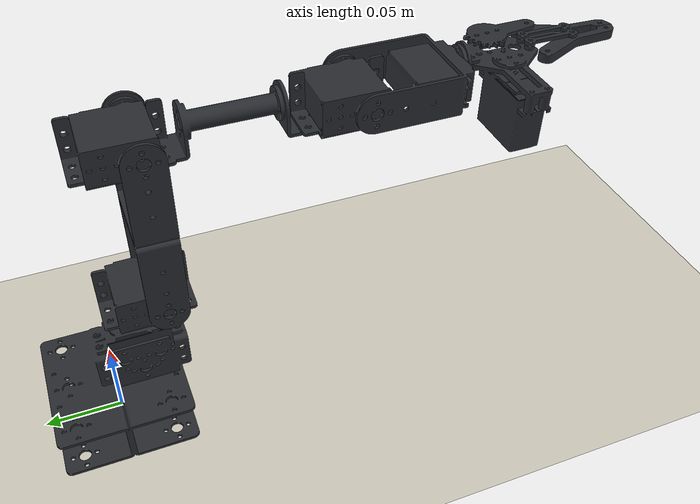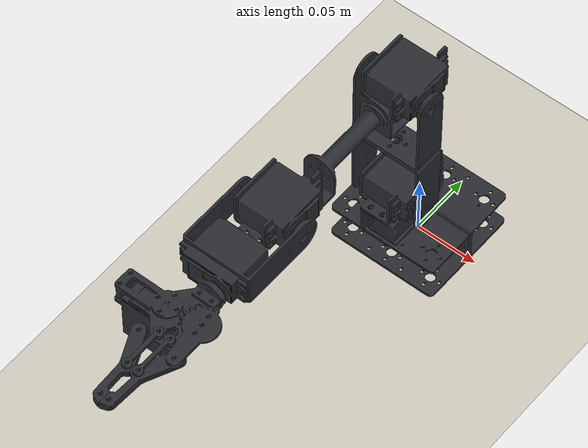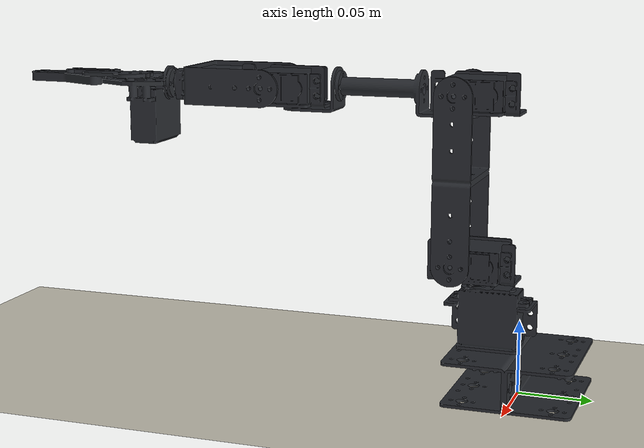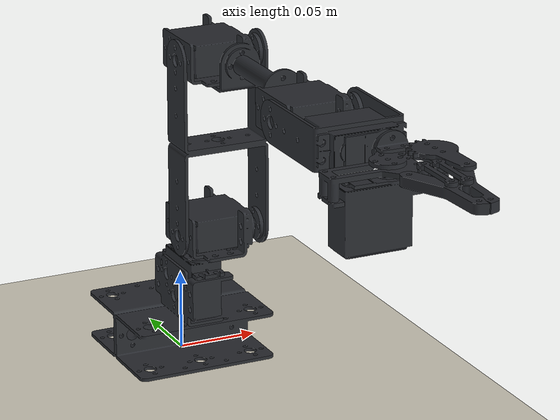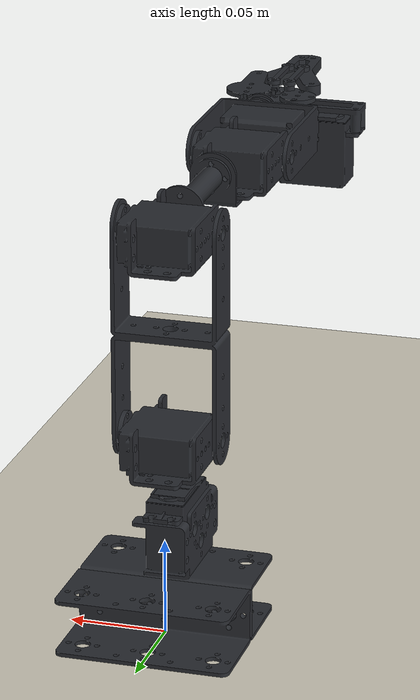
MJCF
<mujoco model="6dof_robotic_arm">

  <compiler
    angle="radian"
    meshdir="meshes"
    autolimits="true"/>

  <option
    timestep="0.002"
    gravity="0 0 -9.81"
    integrator="implicitfast"/>

  <visual>
    <global
      offwidth="1280"
      offheight="720"/>

    <headlight
      diffuse="0.8 0.8 0.8"
      ambient="0.40 0.40 0.40"
      specular="0.25 0.25 0.25"/>

    <rgba
      haze="0.05 0.06 0.08 1"/>
  </visual>

  <asset>

    <!-- Robot meshes -->
    <mesh name="base" file="base.stl"/>
    <mesh name="link1" file="link1.stl"/>
    <mesh name="link2" file="link2.stl"/>
    <mesh name="link3" file="link3.stl"/>
    <mesh name="link4" file="link4.stl"/>
    <mesh name="link5" file="link5.stl"/>

    <!-- Gripper meshes -->
    <mesh name="gripper0" file="gripper_0.stl"/>
    <mesh name="gripper1" file="gripper_1.stl"/>
    <mesh name="gripper2" file="gripper_2.stl"/>
    <mesh name="gripper3" file="gripper_3.stl"/>
    <mesh name="gripper4" file="gripper_4.stl"/>

    <!-- Black robot -->
    <material
    name="robot_gray"
    rgba="0.16 0.17 0.19 1"
    specular="0.25"
    shininess="0.30"/>

    <!-- Table -->
    <material
      name="table_white"
      rgba="0.82 0.80 0.74 1"
      specular="0.15"
      shininess="0.20"/>

    <!-- Light blue sky -->
    <texture
      name="sky"
      type="skybox"
      builtin="gradient"
      rgb1="0.55 0.75 0.95"
      rgb2="0.80 0.90 1.00"
      width="512"
      height="512"/>

  </asset>

  <default>

    <joint
      damping="0.1"
      armature="0.002"
      limited="true"/>

    <geom
      contype="0"
      conaffinity="0"
      density="700"/>

    <motor
      ctrllimited="true"
      ctrlrange="-1 1"/>

  </default>

  <worldbody>

    <!-- Ground / table -->
    <geom
      name="floor"
      type="plane"
      size="2 2 0.1"
      pos="0 0 0"
      material="table_white"
      contype="1"
      conaffinity="1"/>

    <!-- BASE -->
    <body
      name="base"
      pos="0.000000000 0.002000000 0.015000000">

      <geom
        type="mesh"
        mesh="base"
        material="robot_gray"/>

      <!-- LINK 1 -->
      <body
        name="link1"
        pos="0.000000000 -0.031745355 0.064600000">

        <joint
          name="joint1"
          type="hinge"
          axis="0 0 1"
          range="-3.14159265 3.14159265"/>

        <geom
          type="mesh"
          mesh="link1"
          material="robot_gray"/>

        <!-- LINK 2 -->
        <body
          name="link2"
          pos="0.008600000 -0.009999000 0.000000000">

          <joint
            name="joint2"
            type="hinge"
            axis="1 0 0"
            range="-1.5707963 1.5707963"/>

          <geom
            type="mesh"
            mesh="link2"
            material="robot_gray"/>

          <!-- LINK 3 -->
          <body
            name="link3"
            pos="0.000000000 0.010001000 0.134237000">

            <joint
              name="joint3"
              type="hinge"
              axis="1 0 0"
              range="-2.2 2.2"/>

            <geom
              type="mesh"
              mesh="link3"
              material="robot_gray"/>

            <!-- LINK 4 -->
            <body
              name="link4"
              pos="0.000001000 -0.159492645 -0.012498000">

              <joint
                name="joint4"
                type="hinge"
                axis="0 1 0"
                range="-1.5707963 1.5707963"/>

              <geom
                type="mesh"
                mesh="link4"
                material="robot_gray"/>

              <!-- LINK 5 -->
              <body
                name="link5"
                pos="0.027829300 -0.051746000 -0.001499900">

                <joint
                  name="joint5"
                  type="hinge"
                  axis="1 0 0"
                  range="-2.2 2.2"/>

                <geom
                  type="mesh"
                  mesh="link5"
                  material="robot_gray"/>

                <!-- LINK 6 / GRIPPER -->
                <body
                  name="link6"
                  pos="-0.021430300 -0.045608000 0.005999900">

                  <joint
                    name="joint6"
                    type="hinge"
                    axis="0 0 1"
                    range="-3.14159265 3.14159265"/>

                  <geom
                    type="mesh"
                    mesh="gripper0"
                    material="robot_gray"/>

                  <geom
                    type="mesh"
                    mesh="gripper1"
                    material="robot_gray"/>

                  <geom
                    type="mesh"
                    mesh="gripper2"
                    material="robot_gray"/>

                  <geom
                    type="mesh"
                    mesh="gripper3"
                    material="robot_gray"/>

                  <geom
                    type="mesh"
                    mesh="gripper4"
                    material="robot_gray"/>

                </body>

              </body>

            </body>

          </body>

        </body>

      </body>

    </body>

  </worldbody>

  <!-- MOTORS -->
  <actuator>

    <motor
      name="motor1"
      joint="joint1"
      gear="30"/>

    <motor
      name="motor2"
      joint="joint2"
      gear="30"/>

    <motor
      name="motor3"
      joint="joint3"
      gear="30"/>

    <motor
      name="motor4"
      joint="joint4"
      gear="15"/>

    <motor
      name="motor5"
      joint="joint5"
      gear="10"/>

    <motor
      name="motor6"
      joint="joint6"
      gear="5"/>

  </actuator>

  <!-- END-EFFECTOR POSITION SENSOR -->
  <sensor>

    <framepos
      name="ee_pos"
      objtype="body"
      objname="link6"/>

  </sensor>

  <!-- HOME POSITION -->
  <keyframe>

    <key
      name="home"
      qpos="0 0 0 0 0 0"/>

  </keyframe>

</mujoco>
